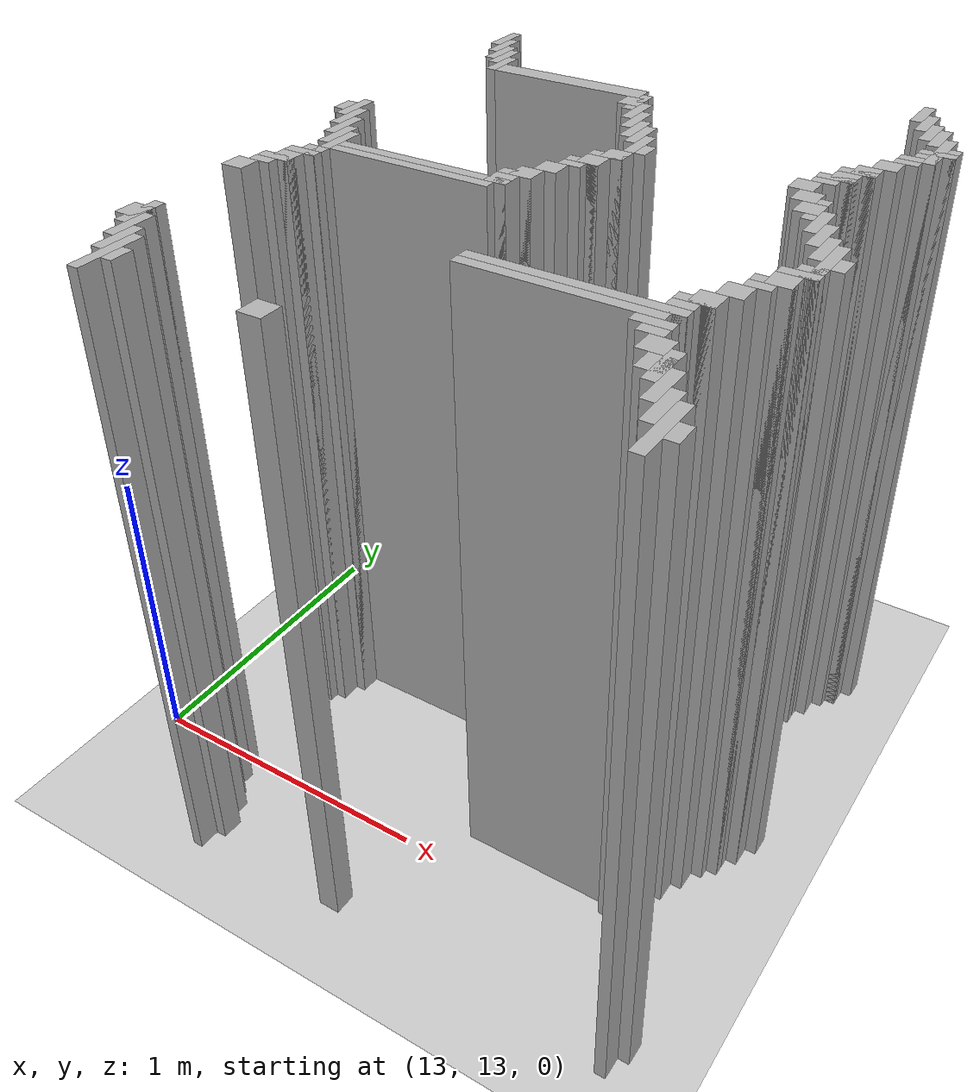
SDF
<sdf version="1.6">
 <world name="slam_world">
  <model name="ground_plane">
   <static>true</static>
   <link name="link">
    <collision name="collision">
     <geometry><plane><normal>0 0 1</normal><size>100 100</size></plane></geometry>
    </collision>
    <visual name="visual">
     <geometry><plane><normal>0 0 1</normal><size>100 100</size></plane></geometry>
     <material>
      <ambient>0.8 0.8 0.8 1</ambient>
      <diffuse>0.8 0.8 0.8 1</diffuse>
      <specular>0.8 0.8 0.8 1</specular>
     </material>
    </visual>
   </link>
  </model>
  <model name="wall_931">
   <static>true</static>
   <pose>13.312064965197216 14.68677494199536 1.0 0 0 0</pose>
   <link name="link">
    <collision name="collision">
     <geometry><box><size>0.03480278422273782 0.13921113689095127 2.0</size></box></geometry>
    </collision>
    <visual name="visual">
     <geometry><box><size>0.03480278422273782 0.13921113689095127 2.0</size></box></geometry>
     <material><ambient>0.5 0.5 0.5 1</ambient><diffuse>0.7 0.7 0.7 1</diffuse></material>
    </visual>
   </link>
  </model>
  <model name="wall_932">
   <static>true</static>
   <pose>14.773781902552203 14.68677494199536 1.0 0 0 0</pose>
   <link name="link">
    <collision name="collision">
     <geometry><box><size>0.03480278422273782 0.13921113689095127 2.0</size></box></geometry>
    </collision>
    <visual name="visual">
     <geometry><box><size>0.03480278422273782 0.13921113689095127 2.0</size></box></geometry>
     <material><ambient>0.5 0.5 0.5 1</ambient><diffuse>0.7 0.7 0.7 1</diffuse></material>
    </visual>
   </link>
  </model>
  <model name="wall_954">
   <static>true</static>
   <pose>13.346867749419953 14.617169373549883 1.0 0 0 0</pose>
   <link name="link">
    <collision name="collision">
     <geometry><box><size>0.03480278422273782 0.13921113689095127 2.0</size></box></geometry>
    </collision>
    <visual name="visual">
     <geometry><box><size>0.03480278422273782 0.13921113689095127 2.0</size></box></geometry>
     <material><ambient>0.5 0.5 0.5 1</ambient><diffuse>0.7 0.7 0.7 1</diffuse></material>
    </visual>
   </link>
  </model>
  <model name="wall_955">
   <static>true</static>
   <pose>14.80858468677494 14.617169373549883 1.0 0 0 0</pose>
   <link name="link">
    <collision name="collision">
     <geometry><box><size>0.03480278422273782 0.13921113689095127 2.0</size></box></geometry>
    </collision>
    <visual name="visual">
     <geometry><box><size>0.03480278422273782 0.13921113689095127 2.0</size></box></geometry>
     <material><ambient>0.5 0.5 0.5 1</ambient><diffuse>0.7 0.7 0.7 1</diffuse></material>
    </visual>
   </link>
  </model>
  <model name="wall_969">
   <static>true</static>
   <pose>13.38167053364269 14.547563805104408 1.0 0 0 0</pose>
   <link name="link">
    <collision name="collision">
     <geometry><box><size>0.03480278422273782 0.13921113689095127 2.0</size></box></geometry>
    </collision>
    <visual name="visual">
     <geometry><box><size>0.03480278422273782 0.13921113689095127 2.0</size></box></geometry>
     <material><ambient>0.5 0.5 0.5 1</ambient><diffuse>0.7 0.7 0.7 1</diffuse></material>
    </visual>
   </link>
  </model>
  <model name="wall_970">
   <static>true</static>
   <pose>14.84338747099768 14.547563805104408 1.0 0 0 0</pose>
   <link name="link">
    <collision name="collision">
     <geometry><box><size>0.03480278422273782 0.13921113689095127 2.0</size></box></geometry>
    </collision>
    <visual name="visual">
     <geometry><box><size>0.03480278422273782 0.13921113689095127 2.0</size></box></geometry>
     <material><ambient>0.5 0.5 0.5 1</ambient><diffuse>0.7 0.7 0.7 1</diffuse></material>
    </visual>
   </link>
  </model>
  <model name="wall_984">
   <static>true</static>
   <pose>13.416473317865428 14.512761020881669 1.0 0 0 0</pose>
   <link name="link">
    <collision name="collision">
     <geometry><box><size>0.03480278422273782 0.13921113689095127 2.0</size></box></geometry>
    </collision>
    <visual name="visual">
     <geometry><box><size>0.03480278422273782 0.13921113689095127 2.0</size></box></geometry>
     <material><ambient>0.5 0.5 0.5 1</ambient><diffuse>0.7 0.7 0.7 1</diffuse></material>
    </visual>
   </link>
  </model>
  <model name="wall_985">
   <static>true</static>
   <pose>14.878190255220417 14.512761020881669 1.0 0 0 0</pose>
   <link name="link">
    <collision name="collision">
     <geometry><box><size>0.03480278422273782 0.13921113689095127 2.0</size></box></geometry>
    </collision>
    <visual name="visual">
     <geometry><box><size>0.03480278422273782 0.13921113689095127 2.0</size></box></geometry>
     <material><ambient>0.5 0.5 0.5 1</ambient><diffuse>0.7 0.7 0.7 1</diffuse></material>
    </visual>
   </link>
  </model>
  <model name="wall_1005">
   <static>true</static>
   <pose>13.451276102088167 14.443155452436194 1.0 0 0 0</pose>
   <link name="link">
    <collision name="collision">
     <geometry><box><size>0.03480278422273782 0.13921113689095127 2.0</size></box></geometry>
    </collision>
    <visual name="visual">
     <geometry><box><size>0.03480278422273782 0.13921113689095127 2.0</size></box></geometry>
     <material><ambient>0.5 0.5 0.5 1</ambient><diffuse>0.7 0.7 0.7 1</diffuse></material>
    </visual>
   </link>
  </model>
  <model name="wall_1006">
   <static>true</static>
   <pose>14.912993039443155 14.408352668213457 1.0 0 0 0</pose>
   <link name="link">
    <collision name="collision">
     <geometry><box><size>0.03480278422273782 0.2088167053364269 2.0</size></box></geometry>
    </collision>
    <visual name="visual">
     <geometry><box><size>0.03480278422273782 0.2088167053364269 2.0</size></box></geometry>
     <material><ambient>0.5 0.5 0.5 1</ambient><diffuse>0.7 0.7 0.7 1</diffuse></material>
    </visual>
   </link>
  </model>
  <model name="wall_1024">
   <static>true</static>
   <pose>13.729698375870068 14.408352668213457 1.0 0 0 0</pose>
   <link name="link">
    <collision name="collision">
     <geometry><box><size>0.5220417633410672 0.06960556844547564 2.0</size></box></geometry>
    </collision>
    <visual name="visual">
     <geometry><box><size>0.5220417633410672 0.06960556844547564 2.0</size></box></geometry>
     <material><ambient>0.5 0.5 0.5 1</ambient><diffuse>0.7 0.7 0.7 1</diffuse></material>
    </visual>
   </link>
  </model>
  <model name="wall_1025">
   <static>true</static>
   <pose>14.947795823665892 14.408352668213457 1.0 0 0 0</pose>
   <link name="link">
    <collision name="collision">
     <geometry><box><size>0.03480278422273782 0.06960556844547564 2.0</size></box></geometry>
    </collision>
    <visual name="visual">
     <geometry><box><size>0.03480278422273782 0.06960556844547564 2.0</size></box></geometry>
     <material><ambient>0.5 0.5 0.5 1</ambient><diffuse>0.7 0.7 0.7 1</diffuse></material>
    </visual>
   </link>
  </model>
  <model name="wall_1036">
   <static>true</static>
   <pose>14.008120649651971 14.33874709976798 1.0 0 0 0</pose>
   <link name="link">
    <collision name="collision">
     <geometry><box><size>0.03480278422273782 0.13921113689095127 2.0</size></box></geometry>
    </collision>
    <visual name="visual">
     <geometry><box><size>0.03480278422273782 0.13921113689095127 2.0</size></box></geometry>
     <material><ambient>0.5 0.5 0.5 1</ambient><diffuse>0.7 0.7 0.7 1</diffuse></material>
    </visual>
   </link>
  </model>
  <model name="wall_1037">
   <static>true</static>
   <pose>14.912993039443155 14.390951276102088 1.0 0 0 0</pose>
   <link name="link">
    <collision name="collision">
     <geometry><box><size>0.10440835266821345 0.03480278422273782 2.0</size></box></geometry>
    </collision>
    <visual name="visual">
     <geometry><box><size>0.10440835266821345 0.03480278422273782 2.0</size></box></geometry>
     <material><ambient>0.5 0.5 0.5 1</ambient><diffuse>0.7 0.7 0.7 1</diffuse></material>
    </visual>
   </link>
  </model>
  <model name="wall_1049">
   <static>true</static>
   <pose>13.990719257540603 14.33874709976798 1.0 0 0 0</pose>
   <link name="link">
    <collision name="collision">
     <geometry><box><size>0.06960556844547564 0.06960556844547564 2.0</size></box></geometry>
    </collision>
    <visual name="visual">
     <geometry><box><size>0.06960556844547564 0.06960556844547564 2.0</size></box></geometry>
     <material><ambient>0.5 0.5 0.5 1</ambient><diffuse>0.7 0.7 0.7 1</diffuse></material>
    </visual>
   </link>
  </model>
  <model name="wall_1050">
   <static>true</static>
   <pose>14.895591647331786 14.33874709976798 1.0 0 0 0</pose>
   <link name="link">
    <collision name="collision">
     <geometry><box><size>0.06960556844547564 0.06960556844547564 2.0</size></box></geometry>
    </collision>
    <visual name="visual">
     <geometry><box><size>0.06960556844547564 0.06960556844547564 2.0</size></box></geometry>
     <material><ambient>0.5 0.5 0.5 1</ambient><diffuse>0.7 0.7 0.7 1</diffuse></material>
    </visual>
   </link>
  </model>
  <model name="wall_1062">
   <static>true</static>
   <pose>14.042923433874709 14.269141531322505 1.0 0 0 0</pose>
   <link name="link">
    <collision name="collision">
     <geometry><box><size>0.03480278422273782 0.13921113689095127 2.0</size></box></geometry>
    </collision>
    <visual name="visual">
     <geometry><box><size>0.03480278422273782 0.13921113689095127 2.0</size></box></geometry>
     <material><ambient>0.5 0.5 0.5 1</ambient><diffuse>0.7 0.7 0.7 1</diffuse></material>
    </visual>
   </link>
  </model>
  <model name="wall_1063">
   <static>true</static>
   <pose>14.878190255220417 14.321345707656612 1.0 0 0 0</pose>
   <link name="link">
    <collision name="collision">
     <geometry><box><size>0.10440835266821345 0.03480278422273782 2.0</size></box></geometry>
    </collision>
    <visual name="visual">
     <geometry><box><size>0.10440835266821345 0.03480278422273782 2.0</size></box></geometry>
     <material><ambient>0.5 0.5 0.5 1</ambient><diffuse>0.7 0.7 0.7 1</diffuse></material>
    </visual>
   </link>
  </model>
  <model name="wall_1071">
   <static>true</static>
   <pose>14.860788863109049 14.286542923433874 1.0 0 0 0</pose>
   <link name="link">
    <collision name="collision">
     <geometry><box><size>0.06960556844547564 0.03480278422273782 2.0</size></box></geometry>
    </collision>
    <visual name="visual">
     <geometry><box><size>0.06960556844547564 0.03480278422273782 2.0</size></box></geometry>
     <material><ambient>0.5 0.5 0.5 1</ambient><diffuse>0.7 0.7 0.7 1</diffuse></material>
    </visual>
   </link>
  </model>
  <model name="wall_1083">
   <static>true</static>
   <pose>14.077726218097448 14.199535962877029 1.0 0 0 0</pose>
   <link name="link">
    <collision name="collision">
     <geometry><box><size>0.03480278422273782 0.13921113689095127 2.0</size></box></geometry>
    </collision>
    <visual name="visual">
     <geometry><box><size>0.03480278422273782 0.13921113689095127 2.0</size></box></geometry>
     <material><ambient>0.5 0.5 0.5 1</ambient><diffuse>0.7 0.7 0.7 1</diffuse></material>
    </visual>
   </link>
  </model>
  <model name="wall_1084">
   <static>true</static>
   <pose>14.825986078886311 14.234338747099768 1.0 0 0 0</pose>
   <link name="link">
    <collision name="collision">
     <geometry><box><size>0.06960556844547564 0.06960556844547564 2.0</size></box></geometry>
    </collision>
    <visual name="visual">
     <geometry><box><size>0.06960556844547564 0.06960556844547564 2.0</size></box></geometry>
     <material><ambient>0.5 0.5 0.5 1</ambient><diffuse>0.7 0.7 0.7 1</diffuse></material>
    </visual>
   </link>
  </model>
  <model name="wall_1096">
   <static>true</static>
   <pose>14.112529002320185 14.129930394431554 1.0 0 0 0</pose>
   <link name="link">
    <collision name="collision">
     <geometry><box><size>0.03480278422273782 0.13921113689095127 2.0</size></box></geometry>
    </collision>
    <visual name="visual">
     <geometry><box><size>0.03480278422273782 0.13921113689095127 2.0</size></box></geometry>
     <material><ambient>0.5 0.5 0.5 1</ambient><diffuse>0.7 0.7 0.7 1</diffuse></material>
    </visual>
   </link>
  </model>
  <model name="wall_1097">
   <static>true</static>
   <pose>14.791183294663572 14.164733178654291 1.0 0 0 0</pose>
   <link name="link">
    <collision name="collision">
     <geometry><box><size>0.06960556844547564 0.06960556844547564 2.0</size></box></geometry>
    </collision>
    <visual name="visual">
     <geometry><box><size>0.06960556844547564 0.06960556844547564 2.0</size></box></geometry>
     <material><ambient>0.5 0.5 0.5 1</ambient><diffuse>0.7 0.7 0.7 1</diffuse></material>
    </visual>
   </link>
  </model>
  <model name="wall_1109">
   <static>true</static>
   <pose>14.147331786542923 14.095127610208817 1.0 0 0 0</pose>
   <link name="link">
    <collision name="collision">
     <geometry><box><size>0.03480278422273782 0.13921113689095127 2.0</size></box></geometry>
    </collision>
    <visual name="visual">
     <geometry><box><size>0.03480278422273782 0.13921113689095127 2.0</size></box></geometry>
     <material><ambient>0.5 0.5 0.5 1</ambient><diffuse>0.7 0.7 0.7 1</diffuse></material>
    </visual>
   </link>
  </model>
  <model name="wall_1110">
   <static>true</static>
   <pose>14.773781902552203 14.147331786542923 1.0 0 0 0</pose>
   <link name="link">
    <collision name="collision">
     <geometry><box><size>0.10440835266821345 0.03480278422273782 2.0</size></box></geometry>
    </collision>
    <visual name="visual">
     <geometry><box><size>0.10440835266821345 0.03480278422273782 2.0</size></box></geometry>
     <material><ambient>0.5 0.5 0.5 1</ambient><diffuse>0.7 0.7 0.7 1</diffuse></material>
    </visual>
   </link>
  </model>
  <model name="wall_1117">
   <static>true</static>
   <pose>14.756380510440835 14.095127610208817 1.0 0 0 0</pose>
   <link name="link">
    <collision name="collision">
     <geometry><box><size>0.06960556844547564 0.06960556844547564 2.0</size></box></geometry>
    </collision>
    <visual name="visual">
     <geometry><box><size>0.06960556844547564 0.06960556844547564 2.0</size></box></geometry>
     <material><ambient>0.5 0.5 0.5 1</ambient><diffuse>0.7 0.7 0.7 1</diffuse></material>
    </visual>
   </link>
  </model>
  <model name="wall_1129">
   <static>true</static>
   <pose>14.18213457076566 13.990719257540603 1.0 0 0 0</pose>
   <link name="link">
    <collision name="collision">
     <geometry><box><size>0.03480278422273782 0.2088167053364269 2.0</size></box></geometry>
    </collision>
    <visual name="visual">
     <geometry><box><size>0.03480278422273782 0.2088167053364269 2.0</size></box></geometry>
     <material><ambient>0.5 0.5 0.5 1</ambient><diffuse>0.7 0.7 0.7 1</diffuse></material>
    </visual>
   </link>
  </model>
  <model name="wall_1130">
   <static>true</static>
   <pose>14.738979118329466 14.077726218097448 1.0 0 0 0</pose>
   <link name="link">
    <collision name="collision">
     <geometry><box><size>0.10440835266821345 0.03480278422273782 2.0</size></box></geometry>
    </collision>
    <visual name="visual">
     <geometry><box><size>0.10440835266821345 0.03480278422273782 2.0</size></box></geometry>
     <material><ambient>0.5 0.5 0.5 1</ambient><diffuse>0.7 0.7 0.7 1</diffuse></material>
    </visual>
   </link>
  </model>
  <model name="wall_1137">
   <static>true</static>
   <pose>14.721577726218097 14.042923433874709 1.0 0 0 0</pose>
   <link name="link">
    <collision name="collision">
     <geometry><box><size>0.06960556844547564 0.03480278422273782 2.0</size></box></geometry>
    </collision>
    <visual name="visual">
     <geometry><box><size>0.06960556844547564 0.03480278422273782 2.0</size></box></geometry>
     <material><ambient>0.5 0.5 0.5 1</ambient><diffuse>0.7 0.7 0.7 1</diffuse></material>
    </visual>
   </link>
  </model>
  <model name="wall_1150">
   <static>true</static>
   <pose>14.2169373549884 13.990719257540603 1.0 0 0 0</pose>
   <link name="link">
    <collision name="collision">
     <geometry><box><size>0.03480278422273782 0.06960556844547564 2.0</size></box></geometry>
    </collision>
    <visual name="visual">
     <geometry><box><size>0.03480278422273782 0.06960556844547564 2.0</size></box></geometry>
     <material><ambient>0.5 0.5 0.5 1</ambient><diffuse>0.7 0.7 0.7 1</diffuse></material>
    </visual>
   </link>
  </model>
  <model name="wall_1151">
   <static>true</static>
   <pose>14.68677494199536 13.990719257540603 1.0 0 0 0</pose>
   <link name="link">
    <collision name="collision">
     <geometry><box><size>0.06960556844547564 0.06960556844547564 2.0</size></box></geometry>
    </collision>
    <visual name="visual">
     <geometry><box><size>0.06960556844547564 0.06960556844547564 2.0</size></box></geometry>
     <material><ambient>0.5 0.5 0.5 1</ambient><diffuse>0.7 0.7 0.7 1</diffuse></material>
    </visual>
   </link>
  </model>
  <model name="wall_1166">
   <static>true</static>
   <pose>14.164733178654291 13.921113689095128 1.0 0 0 0</pose>
   <link name="link">
    <collision name="collision">
     <geometry><box><size>0.06960556844547564 0.06960556844547564 2.0</size></box></geometry>
    </collision>
    <visual name="visual">
     <geometry><box><size>0.06960556844547564 0.06960556844547564 2.0</size></box></geometry>
     <material><ambient>0.5 0.5 0.5 1</ambient><diffuse>0.7 0.7 0.7 1</diffuse></material>
    </visual>
   </link>
  </model>
  <model name="wall_1167">
   <static>true</static>
   <pose>14.721577726218097 13.921113689095128 1.0 0 0 0</pose>
   <link name="link">
    <collision name="collision">
     <geometry><box><size>0.06960556844547564 0.06960556844547564 2.0</size></box></geometry>
    </collision>
    <visual name="visual">
     <geometry><box><size>0.06960556844547564 0.06960556844547564 2.0</size></box></geometry>
     <material><ambient>0.5 0.5 0.5 1</ambient><diffuse>0.7 0.7 0.7 1</diffuse></material>
    </visual>
   </link>
  </model>
  <model name="wall_1181">
   <static>true</static>
   <pose>13.312064965197216 13.851508120649651 1.0 0 0 0</pose>
   <link name="link">
    <collision name="collision">
     <geometry><box><size>0.03480278422273782 0.13921113689095127 2.0</size></box></geometry>
    </collision>
    <visual name="visual">
     <geometry><box><size>0.03480278422273782 0.13921113689095127 2.0</size></box></geometry>
     <material><ambient>0.5 0.5 0.5 1</ambient><diffuse>0.7 0.7 0.7 1</diffuse></material>
    </visual>
   </link>
  </model>
  <model name="wall_1182">
   <static>true</static>
   <pose>14.147331786542923 13.903712296983759 1.0 0 0 0</pose>
   <link name="link">
    <collision name="collision">
     <geometry><box><size>0.10440835266821345 0.03480278422273782 2.0</size></box></geometry>
    </collision>
    <visual name="visual">
     <geometry><box><size>0.10440835266821345 0.03480278422273782 2.0</size></box></geometry>
     <material><ambient>0.5 0.5 0.5 1</ambient><diffuse>0.7 0.7 0.7 1</diffuse></material>
    </visual>
   </link>
  </model>
  <model name="wall_1183">
   <static>true</static>
   <pose>14.773781902552203 13.851508120649651 1.0 0 0 0</pose>
   <link name="link">
    <collision name="collision">
     <geometry><box><size>0.03480278422273782 0.13921113689095127 2.0</size></box></geometry>
    </collision>
    <visual name="visual">
     <geometry><box><size>0.03480278422273782 0.13921113689095127 2.0</size></box></geometry>
     <material><ambient>0.5 0.5 0.5 1</ambient><diffuse>0.7 0.7 0.7 1</diffuse></material>
    </visual>
   </link>
  </model>
  <model name="wall_1197">
   <static>true</static>
   <pose>13.294663573085847 13.851508120649651 1.0 0 0 0</pose>
   <link name="link">
    <collision name="collision">
     <geometry><box><size>0.06960556844547564 0.06960556844547564 2.0</size></box></geometry>
    </collision>
    <visual name="visual">
     <geometry><box><size>0.06960556844547564 0.06960556844547564 2.0</size></box></geometry>
     <material><ambient>0.5 0.5 0.5 1</ambient><diffuse>0.7 0.7 0.7 1</diffuse></material>
    </visual>
   </link>
  </model>
  <model name="wall_1198">
   <static>true</static>
   <pose>14.129930394431554 13.851508120649651 1.0 0 0 0</pose>
   <link name="link">
    <collision name="collision">
     <geometry><box><size>0.06960556844547564 0.06960556844547564 2.0</size></box></geometry>
    </collision>
    <visual name="visual">
     <geometry><box><size>0.06960556844547564 0.06960556844547564 2.0</size></box></geometry>
     <material><ambient>0.5 0.5 0.5 1</ambient><diffuse>0.7 0.7 0.7 1</diffuse></material>
    </visual>
   </link>
  </model>
  <model name="wall_1199">
   <static>true</static>
   <pose>14.756380510440835 13.851508120649651 1.0 0 0 0</pose>
   <link name="link">
    <collision name="collision">
     <geometry><box><size>0.06960556844547564 0.06960556844547564 2.0</size></box></geometry>
    </collision>
    <visual name="visual">
     <geometry><box><size>0.06960556844547564 0.06960556844547564 2.0</size></box></geometry>
     <material><ambient>0.5 0.5 0.5 1</ambient><diffuse>0.7 0.7 0.7 1</diffuse></material>
    </visual>
   </link>
  </model>
  <model name="wall_1213">
   <static>true</static>
   <pose>13.346867749419953 13.781902552204176 1.0 0 0 0</pose>
   <link name="link">
    <collision name="collision">
     <geometry><box><size>0.03480278422273782 0.13921113689095127 2.0</size></box></geometry>
    </collision>
    <visual name="visual">
     <geometry><box><size>0.03480278422273782 0.13921113689095127 2.0</size></box></geometry>
     <material><ambient>0.5 0.5 0.5 1</ambient><diffuse>0.7 0.7 0.7 1</diffuse></material>
    </visual>
   </link>
  </model>
  <model name="wall_1214">
   <static>true</static>
   <pose>14.112529002320185 13.834106728538282 1.0 0 0 0</pose>
   <link name="link">
    <collision name="collision">
     <geometry><box><size>0.10440835266821345 0.03480278422273782 2.0</size></box></geometry>
    </collision>
    <visual name="visual">
     <geometry><box><size>0.10440835266821345 0.03480278422273782 2.0</size></box></geometry>
     <material><ambient>0.5 0.5 0.5 1</ambient><diffuse>0.7 0.7 0.7 1</diffuse></material>
    </visual>
   </link>
  </model>
  <model name="wall_1215">
   <static>true</static>
   <pose>14.80858468677494 13.781902552204176 1.0 0 0 0</pose>
   <link name="link">
    <collision name="collision">
     <geometry><box><size>0.03480278422273782 0.13921113689095127 2.0</size></box></geometry>
    </collision>
    <visual name="visual">
     <geometry><box><size>0.03480278422273782 0.13921113689095127 2.0</size></box></geometry>
     <material><ambient>0.5 0.5 0.5 1</ambient><diffuse>0.7 0.7 0.7 1</diffuse></material>
    </visual>
   </link>
  </model>
  <model name="wall_1223">
   <static>true</static>
   <pose>14.095127610208817 13.799303944315545 1.0 0 0 0</pose>
   <link name="link">
    <collision name="collision">
     <geometry><box><size>0.06960556844547564 0.03480278422273782 2.0</size></box></geometry>
    </collision>
    <visual name="visual">
     <geometry><box><size>0.06960556844547564 0.03480278422273782 2.0</size></box></geometry>
     <material><ambient>0.5 0.5 0.5 1</ambient><diffuse>0.7 0.7 0.7 1</diffuse></material>
    </visual>
   </link>
  </model>
  <model name="wall_1237">
   <static>true</static>
   <pose>13.38167053364269 13.7122969837587 1.0 0 0 0</pose>
   <link name="link">
    <collision name="collision">
     <geometry><box><size>0.03480278422273782 0.13921113689095127 2.0</size></box></geometry>
    </collision>
    <visual name="visual">
     <geometry><box><size>0.03480278422273782 0.13921113689095127 2.0</size></box></geometry>
     <material><ambient>0.5 0.5 0.5 1</ambient><diffuse>0.7 0.7 0.7 1</diffuse></material>
    </visual>
   </link>
  </model>
  <model name="wall_1238">
   <static>true</static>
   <pose>14.06032482598608 13.747099767981437 1.0 0 0 0</pose>
   <link name="link">
    <collision name="collision">
     <geometry><box><size>0.06960556844547564 0.06960556844547564 2.0</size></box></geometry>
    </collision>
    <visual name="visual">
     <geometry><box><size>0.06960556844547564 0.06960556844547564 2.0</size></box></geometry>
     <material><ambient>0.5 0.5 0.5 1</ambient><diffuse>0.7 0.7 0.7 1</diffuse></material>
    </visual>
   </link>
  </model>
  <model name="wall_1239">
   <static>true</static>
   <pose>14.84338747099768 13.7122969837587 1.0 0 0 0</pose>
   <link name="link">
    <collision name="collision">
     <geometry><box><size>0.03480278422273782 0.13921113689095127 2.0</size></box></geometry>
    </collision>
    <visual name="visual">
     <geometry><box><size>0.03480278422273782 0.13921113689095127 2.0</size></box></geometry>
     <material><ambient>0.5 0.5 0.5 1</ambient><diffuse>0.7 0.7 0.7 1</diffuse></material>
    </visual>
   </link>
  </model>
  <model name="wall_1253">
   <static>true</static>
   <pose>13.416473317865428 13.642691415313225 1.0 0 0 0</pose>
   <link name="link">
    <collision name="collision">
     <geometry><box><size>0.03480278422273782 0.13921113689095127 2.0</size></box></geometry>
    </collision>
    <visual name="visual">
     <geometry><box><size>0.03480278422273782 0.13921113689095127 2.0</size></box></geometry>
     <material><ambient>0.5 0.5 0.5 1</ambient><diffuse>0.7 0.7 0.7 1</diffuse></material>
    </visual>
   </link>
  </model>
  <model name="wall_1254">
   <static>true</static>
   <pose>14.02552204176334 13.677494199535962 1.0 0 0 0</pose>
   <link name="link">
    <collision name="collision">
     <geometry><box><size>0.06960556844547564 0.06960556844547564 2.0</size></box></geometry>
    </collision>
    <visual name="visual">
     <geometry><box><size>0.06960556844547564 0.06960556844547564 2.0</size></box></geometry>
     <material><ambient>0.5 0.5 0.5 1</ambient><diffuse>0.7 0.7 0.7 1</diffuse></material>
    </visual>
   </link>
  </model>
  <model name="wall_1255">
   <static>true</static>
   <pose>14.878190255220417 13.642691415313225 1.0 0 0 0</pose>
   <link name="link">
    <collision name="collision">
     <geometry><box><size>0.03480278422273782 0.13921113689095127 2.0</size></box></geometry>
    </collision>
    <visual name="visual">
     <geometry><box><size>0.03480278422273782 0.13921113689095127 2.0</size></box></geometry>
     <material><ambient>0.5 0.5 0.5 1</ambient><diffuse>0.7 0.7 0.7 1</diffuse></material>
    </visual>
   </link>
  </model>
  <model name="wall_1269">
   <static>true</static>
   <pose>13.451276102088167 13.573085846867748 1.0 0 0 0</pose>
   <link name="link">
    <collision name="collision">
     <geometry><box><size>0.03480278422273782 0.2088167053364269 2.0</size></box></geometry>
    </collision>
    <visual name="visual">
     <geometry><box><size>0.03480278422273782 0.2088167053364269 2.0</size></box></geometry>
     <material><ambient>0.5 0.5 0.5 1</ambient><diffuse>0.7 0.7 0.7 1</diffuse></material>
    </visual>
   </link>
  </model>
  <model name="wall_1270">
   <static>true</static>
   <pose>14.008120649651971 13.660092807424594 1.0 0 0 0</pose>
   <link name="link">
    <collision name="collision">
     <geometry><box><size>0.10440835266821345 0.03480278422273782 2.0</size></box></geometry>
    </collision>
    <visual name="visual">
     <geometry><box><size>0.10440835266821345 0.03480278422273782 2.0</size></box></geometry>
     <material><ambient>0.5 0.5 0.5 1</ambient><diffuse>0.7 0.7 0.7 1</diffuse></material>
    </visual>
   </link>
  </model>
  <model name="wall_1271">
   <static>true</static>
   <pose>14.912993039443155 13.573085846867748 1.0 0 0 0</pose>
   <link name="link">
    <collision name="collision">
     <geometry><box><size>0.03480278422273782 0.2088167053364269 2.0</size></box></geometry>
    </collision>
    <visual name="visual">
     <geometry><box><size>0.03480278422273782 0.2088167053364269 2.0</size></box></geometry>
     <material><ambient>0.5 0.5 0.5 1</ambient><diffuse>0.7 0.7 0.7 1</diffuse></material>
    </visual>
   </link>
  </model>
  <model name="wall_1279">
   <static>true</static>
   <pose>13.990719257540603 13.607888631090487 1.0 0 0 0</pose>
   <link name="link">
    <collision name="collision">
     <geometry><box><size>0.06960556844547564 0.06960556844547564 2.0</size></box></geometry>
    </collision>
    <visual name="visual">
     <geometry><box><size>0.06960556844547564 0.06960556844547564 2.0</size></box></geometry>
     <material><ambient>0.5 0.5 0.5 1</ambient><diffuse>0.7 0.7 0.7 1</diffuse></material>
    </visual>
   </link>
  </model>
  <model name="wall_1293">
   <static>true</static>
   <pose>13.747099767981437 13.590487238979117 1.0 0 0 0</pose>
   <link name="link">
    <collision name="collision">
     <geometry><box><size>0.5568445475638051 0.03480278422273782 2.0</size></box></geometry>
    </collision>
    <visual name="visual">
     <geometry><box><size>0.5568445475638051 0.03480278422273782 2.0</size></box></geometry>
     <material><ambient>0.5 0.5 0.5 1</ambient><diffuse>0.7 0.7 0.7 1</diffuse></material>
    </visual>
   </link>
  </model>
  <model name="wall_1294">
   <static>true</static>
   <pose>14.947795823665892 13.573085846867748 1.0 0 0 0</pose>
   <link name="link">
    <collision name="collision">
     <geometry><box><size>0.03480278422273782 0.06960556844547564 2.0</size></box></geometry>
    </collision>
    <visual name="visual">
     <geometry><box><size>0.03480278422273782 0.06960556844547564 2.0</size></box></geometry>
     <material><ambient>0.5 0.5 0.5 1</ambient><diffuse>0.7 0.7 0.7 1</diffuse></material>
    </visual>
   </link>
  </model>
  <model name="wall_1302">
   <static>true</static>
   <pose>13.729698375870068 13.55568445475638 1.0 0 0 0</pose>
   <link name="link">
    <collision name="collision">
     <geometry><box><size>0.5220417633410672 0.03480278422273782 2.0</size></box></geometry>
    </collision>
    <visual name="visual">
     <geometry><box><size>0.5220417633410672 0.03480278422273782 2.0</size></box></geometry>
     <material><ambient>0.5 0.5 0.5 1</ambient><diffuse>0.7 0.7 0.7 1</diffuse></material>
    </visual>
   </link>
  </model>
  <model name="wall_1315">
   <static>true</static>
   <pose>13.433874709976797 13.503480278422273 1.0 0 0 0</pose>
   <link name="link">
    <collision name="collision">
     <geometry><box><size>0.06960556844547564 0.06960556844547564 2.0</size></box></geometry>
    </collision>
    <visual name="visual">
     <geometry><box><size>0.06960556844547564 0.06960556844547564 2.0</size></box></geometry>
     <material><ambient>0.5 0.5 0.5 1</ambient><diffuse>0.7 0.7 0.7 1</diffuse></material>
    </visual>
   </link>
  </model>
  <model name="wall_1316">
   <static>true</static>
   <pose>14.895591647331786 13.503480278422273 1.0 0 0 0</pose>
   <link name="link">
    <collision name="collision">
     <geometry><box><size>0.06960556844547564 0.06960556844547564 2.0</size></box></geometry>
    </collision>
    <visual name="visual">
     <geometry><box><size>0.06960556844547564 0.06960556844547564 2.0</size></box></geometry>
     <material><ambient>0.5 0.5 0.5 1</ambient><diffuse>0.7 0.7 0.7 1</diffuse></material>
    </visual>
   </link>
  </model>
  <model name="wall_1329">
   <static>true</static>
   <pose>13.416473317865428 13.486078886310905 1.0 0 0 0</pose>
   <link name="link">
    <collision name="collision">
     <geometry><box><size>0.10440835266821345 0.03480278422273782 2.0</size></box></geometry>
    </collision>
    <visual name="visual">
     <geometry><box><size>0.10440835266821345 0.03480278422273782 2.0</size></box></geometry>
     <material><ambient>0.5 0.5 0.5 1</ambient><diffuse>0.7 0.7 0.7 1</diffuse></material>
    </visual>
   </link>
  </model>
  <model name="wall_1330">
   <static>true</static>
   <pose>14.878190255220417 13.486078886310905 1.0 0 0 0</pose>
   <link name="link">
    <collision name="collision">
     <geometry><box><size>0.10440835266821345 0.03480278422273782 2.0</size></box></geometry>
    </collision>
    <visual name="visual">
     <geometry><box><size>0.10440835266821345 0.03480278422273782 2.0</size></box></geometry>
     <material><ambient>0.5 0.5 0.5 1</ambient><diffuse>0.7 0.7 0.7 1</diffuse></material>
    </visual>
   </link>
  </model>
  <model name="wall_1343">
   <static>true</static>
   <pose>13.39907192575406 13.433874709976797 1.0 0 0 0</pose>
   <link name="link">
    <collision name="collision">
     <geometry><box><size>0.06960556844547564 0.06960556844547564 2.0</size></box></geometry>
    </collision>
    <visual name="visual">
     <geometry><box><size>0.06960556844547564 0.06960556844547564 2.0</size></box></geometry>
     <material><ambient>0.5 0.5 0.5 1</ambient><diffuse>0.7 0.7 0.7 1</diffuse></material>
    </visual>
   </link>
  </model>
  <model name="wall_1344">
   <static>true</static>
   <pose>14.860788863109049 13.433874709976797 1.0 0 0 0</pose>
   <link name="link">
    <collision name="collision">
     <geometry><box><size>0.06960556844547564 0.06960556844547564 2.0</size></box></geometry>
    </collision>
    <visual name="visual">
     <geometry><box><size>0.06960556844547564 0.06960556844547564 2.0</size></box></geometry>
     <material><ambient>0.5 0.5 0.5 1</ambient><diffuse>0.7 0.7 0.7 1</diffuse></material>
    </visual>
   </link>
  </model>
  <model name="wall_1357">
   <static>true</static>
   <pose>13.38167053364269 13.416473317865428 1.0 0 0 0</pose>
   <link name="link">
    <collision name="collision">
     <geometry><box><size>0.10440835266821345 0.03480278422273782 2.0</size></box></geometry>
    </collision>
    <visual name="visual">
     <geometry><box><size>0.10440835266821345 0.03480278422273782 2.0</size></box></geometry>
     <material><ambient>0.5 0.5 0.5 1</ambient><diffuse>0.7 0.7 0.7 1</diffuse></material>
    </visual>
   </link>
  </model>
  <model name="wall_1358">
   <static>true</static>
   <pose>14.84338747099768 13.416473317865428 1.0 0 0 0</pose>
   <link name="link">
    <collision name="collision">
     <geometry><box><size>0.10440835266821345 0.03480278422273782 2.0</size></box></geometry>
    </collision>
    <visual name="visual">
     <geometry><box><size>0.10440835266821345 0.03480278422273782 2.0</size></box></geometry>
     <material><ambient>0.5 0.5 0.5 1</ambient><diffuse>0.7 0.7 0.7 1</diffuse></material>
    </visual>
   </link>
  </model>
  <model name="wall_1366">
   <static>true</static>
   <pose>13.364269141531322 13.38167053364269 1.0 0 0 0</pose>
   <link name="link">
    <collision name="collision">
     <geometry><box><size>0.06960556844547564 0.03480278422273782 2.0</size></box></geometry>
    </collision>
    <visual name="visual">
     <geometry><box><size>0.06960556844547564 0.03480278422273782 2.0</size></box></geometry>
     <material><ambient>0.5 0.5 0.5 1</ambient><diffuse>0.7 0.7 0.7 1</diffuse></material>
    </visual>
   </link>
  </model>
  <model name="wall_1367">
   <static>true</static>
   <pose>14.825986078886311 13.38167053364269 1.0 0 0 0</pose>
   <link name="link">
    <collision name="collision">
     <geometry><box><size>0.06960556844547564 0.03480278422273782 2.0</size></box></geometry>
    </collision>
    <visual name="visual">
     <geometry><box><size>0.06960556844547564 0.03480278422273782 2.0</size></box></geometry>
     <material><ambient>0.5 0.5 0.5 1</ambient><diffuse>0.7 0.7 0.7 1</diffuse></material>
    </visual>
   </link>
  </model>
  <model name="wall_1380">
   <static>true</static>
   <pose>13.329466357308585 13.329466357308585 1.0 0 0 0</pose>
   <link name="link">
    <collision name="collision">
     <geometry><box><size>0.06960556844547564 0.06960556844547564 2.0</size></box></geometry>
    </collision>
    <visual name="visual">
     <geometry><box><size>0.06960556844547564 0.06960556844547564 2.0</size></box></geometry>
     <material><ambient>0.5 0.5 0.5 1</ambient><diffuse>0.7 0.7 0.7 1</diffuse></material>
    </visual>
   </link>
  </model>
  <model name="wall_1381">
   <static>true</static>
   <pose>14.791183294663572 13.329466357308585 1.0 0 0 0</pose>
   <link name="link">
    <collision name="collision">
     <geometry><box><size>0.06960556844547564 0.06960556844547564 2.0</size></box></geometry>
    </collision>
    <visual name="visual">
     <geometry><box><size>0.06960556844547564 0.06960556844547564 2.0</size></box></geometry>
     <material><ambient>0.5 0.5 0.5 1</ambient><diffuse>0.7 0.7 0.7 1</diffuse></material>
    </visual>
   </link>
  </model>
  <model name="wall_1395">
   <static>true</static>
   <pose>14.756380510440835 13.259860788863108 1.0 0 0 0</pose>
   <link name="link">
    <collision name="collision">
     <geometry><box><size>0.06960556844547564 0.06960556844547564 2.0</size></box></geometry>
    </collision>
    <visual name="visual">
     <geometry><box><size>0.06960556844547564 0.06960556844547564 2.0</size></box></geometry>
     <material><ambient>0.5 0.5 0.5 1</ambient><diffuse>0.7 0.7 0.7 1</diffuse></material>
    </visual>
   </link>
  </model>
  <model name="wall_1409">
   <static>true</static>
   <pose>14.738979118329466 13.24245939675174 1.0 0 0 0</pose>
   <link name="link">
    <collision name="collision">
     <geometry><box><size>0.10440835266821345 0.03480278422273782 2.0</size></box></geometry>
    </collision>
    <visual name="visual">
     <geometry><box><size>0.10440835266821345 0.03480278422273782 2.0</size></box></geometry>
     <material><ambient>0.5 0.5 0.5 1</ambient><diffuse>0.7 0.7 0.7 1</diffuse></material>
    </visual>
   </link>
  </model>
  <model name="wall_1418">
   <static>true</static>
   <pose>14.721577726218097 13.190255220417633 1.0 0 0 0</pose>
   <link name="link">
    <collision name="collision">
     <geometry><box><size>0.06960556844547564 0.06960556844547564 2.0</size></box></geometry>
    </collision>
    <visual name="visual">
     <geometry><box><size>0.06960556844547564 0.06960556844547564 2.0</size></box></geometry>
     <material><ambient>0.5 0.5 0.5 1</ambient><diffuse>0.7 0.7 0.7 1</diffuse></material>
    </visual>
   </link>
  </model>
  <model name="wall_1431">
   <static>true</static>
   <pose>14.460556844547563 13.172853828306264 1.0 0 0 0</pose>
   <link name="link">
    <collision name="collision">
     <geometry><box><size>0.5916473317865429 0.03480278422273782 2.0</size></box></geometry>
    </collision>
    <visual name="visual">
     <geometry><box><size>0.5916473317865429 0.03480278422273782 2.0</size></box></geometry>
     <material><ambient>0.5 0.5 0.5 1</ambient><diffuse>0.7 0.7 0.7 1</diffuse></material>
    </visual>
   </link>
  </model>
  <model name="wall_1440">
   <static>true</static>
   <pose>14.443155452436194 13.138051044083527 1.0 0 0 0</pose>
   <link name="link">
    <collision name="collision">
     <geometry><box><size>0.5568445475638051 0.03480278422273782 2.0</size></box></geometry>
    </collision>
    <visual name="visual">
     <geometry><box><size>0.5568445475638051 0.03480278422273782 2.0</size></box></geometry>
     <material><ambient>0.5 0.5 0.5 1</ambient><diffuse>0.7 0.7 0.7 1</diffuse></material>
    </visual>
   </link>
  </model>
  <model name="wall_1452">
   <static>true</static>
   <pose>14.704176334106728 13.103248259860788 1.0 0 0 0</pose>
   <link name="link">
    <collision name="collision">
     <geometry><box><size>0.10440835266821345 0.03480278422273782 2.0</size></box></geometry>
    </collision>
    <visual name="visual">
     <geometry><box><size>0.10440835266821345 0.03480278422273782 2.0</size></box></geometry>
     <material><ambient>0.5 0.5 0.5 1</ambient><diffuse>0.7 0.7 0.7 1</diffuse></material>
    </visual>
   </link>
  </model>
  <model name="wall_1460">
   <static>true</static>
   <pose>14.721577726218097 13.06844547563805 1.0 0 0 0</pose>
   <link name="link">
    <collision name="collision">
     <geometry><box><size>0.06960556844547564 0.03480278422273782 2.0</size></box></geometry>
    </collision>
    <visual name="visual">
     <geometry><box><size>0.06960556844547564 0.03480278422273782 2.0</size></box></geometry>
     <material><ambient>0.5 0.5 0.5 1</ambient><diffuse>0.7 0.7 0.7 1</diffuse></material>
    </visual>
   </link>
  </model>
  <model name="wall_1472">
   <static>true</static>
   <pose>14.756380510440835 13.016241299303944 1.0 0 0 0</pose>
   <link name="link">
    <collision name="collision">
     <geometry><box><size>0.06960556844547564 0.06960556844547564 2.0</size></box></geometry>
    </collision>
    <visual name="visual">
     <geometry><box><size>0.06960556844547564 0.06960556844547564 2.0</size></box></geometry>
     <material><ambient>0.5 0.5 0.5 1</ambient><diffuse>0.7 0.7 0.7 1</diffuse></material>
    </visual>
   </link>
  </model>
  <model name="wall_1483">
   <static>true</static>
   <pose>13.346867749419953 12.946635730858468 1.0 0 0 0</pose>
   <link name="link">
    <collision name="collision">
     <geometry><box><size>0.03480278422273782 0.13921113689095127 2.0</size></box></geometry>
    </collision>
    <visual name="visual">
     <geometry><box><size>0.03480278422273782 0.13921113689095127 2.0</size></box></geometry>
     <material><ambient>0.5 0.5 0.5 1</ambient><diffuse>0.7 0.7 0.7 1</diffuse></material>
    </visual>
   </link>
  </model>
  <model name="wall_1484">
   <static>true</static>
   <pose>14.80858468677494 12.946635730858468 1.0 0 0 0</pose>
   <link name="link">
    <collision name="collision">
     <geometry><box><size>0.03480278422273782 0.13921113689095127 2.0</size></box></geometry>
    </collision>
    <visual name="visual">
     <geometry><box><size>0.03480278422273782 0.13921113689095127 2.0</size></box></geometry>
     <material><ambient>0.5 0.5 0.5 1</ambient><diffuse>0.7 0.7 0.7 1</diffuse></material>
    </visual>
   </link>
  </model>
  <model name="wall_1495">
   <static>true</static>
   <pose>13.329466357308585 12.946635730858468 1.0 0 0 0</pose>
   <link name="link">
    <collision name="collision">
     <geometry><box><size>0.06960556844547564 0.06960556844547564 2.0</size></box></geometry>
    </collision>
    <visual name="visual">
     <geometry><box><size>0.06960556844547564 0.06960556844547564 2.0</size></box></geometry>
     <material><ambient>0.5 0.5 0.5 1</ambient><diffuse>0.7 0.7 0.7 1</diffuse></material>
    </visual>
   </link>
  </model>
  <model name="wall_1496">
   <static>true</static>
   <pose>14.791183294663572 12.946635730858468 1.0 0 0 0</pose>
   <link name="link">
    <collision name="collision">
     <geometry><box><size>0.06960556844547564 0.06960556844547564 2.0</size></box></geometry>
    </collision>
    <visual name="visual">
     <geometry><box><size>0.06960556844547564 0.06960556844547564 2.0</size></box></geometry>
     <material><ambient>0.5 0.5 0.5 1</ambient><diffuse>0.7 0.7 0.7 1</diffuse></material>
    </visual>
   </link>
  </model>
  <model name="wall_1507">
   <static>true</static>
   <pose>13.38167053364269 12.877030162412993 1.0 0 0 0</pose>
   <link name="link">
    <collision name="collision">
     <geometry><box><size>0.03480278422273782 0.13921113689095127 2.0</size></box></geometry>
    </collision>
    <visual name="visual">
     <geometry><box><size>0.03480278422273782 0.13921113689095127 2.0</size></box></geometry>
     <material><ambient>0.5 0.5 0.5 1</ambient><diffuse>0.7 0.7 0.7 1</diffuse></material>
    </visual>
   </link>
  </model>
  <model name="wall_1508">
   <static>true</static>
   <pose>14.84338747099768 12.877030162412993 1.0 0 0 0</pose>
   <link name="link">
    <collision name="collision">
     <geometry><box><size>0.03480278422273782 0.13921113689095127 2.0</size></box></geometry>
    </collision>
    <visual name="visual">
     <geometry><box><size>0.03480278422273782 0.13921113689095127 2.0</size></box></geometry>
     <material><ambient>0.5 0.5 0.5 1</ambient><diffuse>0.7 0.7 0.7 1</diffuse></material>
    </visual>
   </link>
  </model>
  <model name="wall_1525">
   <static>true</static>
   <pose>13.416473317865428 12.807424593967516 1.0 0 0 0</pose>
   <link name="link">
    <collision name="collision">
     <geometry><box><size>0.03480278422273782 0.13921113689095127 2.0</size></box></geometry>
    </collision>
    <visual name="visual">
     <geometry><box><size>0.03480278422273782 0.13921113689095127 2.0</size></box></geometry>
     <material><ambient>0.5 0.5 0.5 1</ambient><diffuse>0.7 0.7 0.7 1</diffuse></material>
    </visual>
   </link>
  </model>
  <model name="wall_1526">
   <static>true</static>
   <pose>14.878190255220417 12.807424593967516 1.0 0 0 0</pose>
   <link name="link">
    <collision name="collision">
     <geometry><box><size>0.03480278422273782 0.13921113689095127 2.0</size></box></geometry>
    </collision>
    <visual name="visual">
     <geometry><box><size>0.03480278422273782 0.13921113689095127 2.0</size></box></geometry>
     <material><ambient>0.5 0.5 0.5 1</ambient><diffuse>0.7 0.7 0.7 1</diffuse></material>
    </visual>
   </link>
  </model>
  <model name="wall_1537">
   <static>true</static>
   <pose>13.451276102088167 12.737819025522041 1.0 0 0 0</pose>
   <link name="link">
    <collision name="collision">
     <geometry><box><size>0.03480278422273782 0.2088167053364269 2.0</size></box></geometry>
    </collision>
    <visual name="visual">
     <geometry><box><size>0.03480278422273782 0.2088167053364269 2.0</size></box></geometry>
     <material><ambient>0.5 0.5 0.5 1</ambient><diffuse>0.7 0.7 0.7 1</diffuse></material>
    </visual>
   </link>
  </model>
  <model name="wall_1538">
   <static>true</static>
   <pose>14.912993039443155 12.737819025522041 1.0 0 0 0</pose>
   <link name="link">
    <collision name="collision">
     <geometry><box><size>0.03480278422273782 0.2088167053364269 2.0</size></box></geometry>
    </collision>
    <visual name="visual">
     <geometry><box><size>0.03480278422273782 0.2088167053364269 2.0</size></box></geometry>
     <material><ambient>0.5 0.5 0.5 1</ambient><diffuse>0.7 0.7 0.7 1</diffuse></material>
    </visual>
   </link>
  </model>
  <model name="wall_1556">
   <static>true</static>
   <pose>13.486078886310905 12.737819025522041 1.0 0 0 0</pose>
   <link name="link">
    <collision name="collision">
     <geometry><box><size>0.03480278422273782 0.06960556844547564 2.0</size></box></geometry>
    </collision>
    <visual name="visual">
     <geometry><box><size>0.03480278422273782 0.06960556844547564 2.0</size></box></geometry>
     <material><ambient>0.5 0.5 0.5 1</ambient><diffuse>0.7 0.7 0.7 1</diffuse></material>
    </visual>
   </link>
  </model>
  <model name="wall_1557">
   <static>true</static>
   <pose>14.947795823665892 12.737819025522041 1.0 0 0 0</pose>
   <link name="link">
    <collision name="collision">
     <geometry><box><size>0.03480278422273782 0.06960556844547564 2.0</size></box></geometry>
    </collision>
    <visual name="visual">
     <geometry><box><size>0.03480278422273782 0.06960556844547564 2.0</size></box></geometry>
     <material><ambient>0.5 0.5 0.5 1</ambient><diffuse>0.7 0.7 0.7 1</diffuse></material>
    </visual>
   </link>
  </model>
  <model name="wall_1568">
   <static>true</static>
   <pose>13.955916473317865 12.703016241299304 1.0 0 0 0</pose>
   <link name="link">
    <collision name="collision">
     <geometry><box><size>0.06960556844547564 0.06960556844547564 2.0</size></box></geometry>
    </collision>
    <visual name="visual">
     <geometry><box><size>0.06960556844547564 0.06960556844547564 2.0</size></box></geometry>
     <material><ambient>0.5 0.5 0.5 1</ambient><diffuse>0.7 0.7 0.7 1</diffuse></material>
    </visual>
   </link>
  </model>
 </world>
</sdf>
